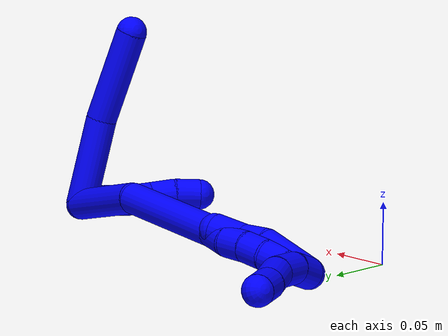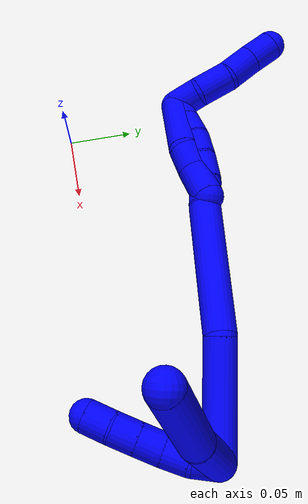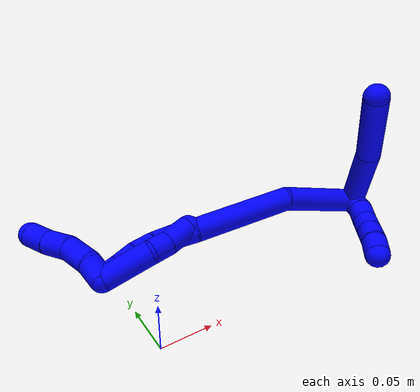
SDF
<sdf version="1.7">
 <world name="default">
  <model name="1">
   <static>0</static>
   <link name="1">
    <collision name="collision-cylinder-e_1_2_8">
     <pose>0.026634 -0.021279 -0.012299 2.09486 0.825533 1.29837</pose>
     <geometry><cylinder><radius>0.0125</radius><length>0.072483</length></cylinder></geometry>
     <surface>
      <friction><ode><mu>1.16</mu><mu2>1.16</mu2><slip1>0</slip1><slip2>0</slip2></ode></friction>
      <contact><ode><kp>1e+06</kp><kd>1</kd><max_vel>0</max_vel><min_depth>0.001</min_depth></ode></contact>
     </surface>
    </collision>
    <visual name="visual-cylinder-e_1_2_8">
     <pose>0.026634 -0.021279 -0.012299 2.09486 0.825533 1.29837</pose>
     <geometry><cylinder><radius>0.0125</radius><length>0.072483</length></cylinder></geometry>
     <material><ambient>0 0 1 1</ambient></material>
    </visual>
    <collision name="collision-cylinder-e_2_8_6">
     <pose>0.080164 -0.062558 -0.044062 2.34263 0.766929 1.5254</pose>
     <geometry><cylinder><radius>0.0125</radius><length>0.077517</length></cylinder></geometry>
     <surface>
      <friction><ode><mu>1.16</mu><mu2>1.16</mu2><slip1>0</slip1><slip2>0</slip2></ode></friction>
      <contact><ode><kp>1e+06</kp><kd>1</kd><max_vel>0</max_vel><min_depth>0.001</min_depth></ode></contact>
     </surface>
    </collision>
    <visual name="visual-cylinder-e_2_8_6">
     <pose>0.080164 -0.062558 -0.044062 2.34263 0.766929 1.5254</pose>
     <geometry><cylinder><radius>0.0125</radius><length>0.077517</length></cylinder></geometry>
     <material><ambient>0 0 1 1</ambient></material>
    </visual>
    <collision name="collision-cylinder-e_1_2_9">
     <pose>0.008308 0.005526 -0.000657 -1.68917 0.980616 -1.08235</pose>
     <geometry><cylinder><radius>0.0125</radius><length>0.02</length></cylinder></geometry>
     <surface>
      <friction><ode><mu>1.16</mu><mu2>1.16</mu2><slip1>0</slip1><slip2>0</slip2></ode></friction>
      <contact><ode><kp>1e+06</kp><kd>1</kd><max_vel>0</max_vel><min_depth>0.001</min_depth></ode></contact>
     </surface>
    </collision>
    <visual name="visual-cylinder-e_1_2_9">
     <pose>0.008308 0.005526 -0.000657 -1.68917 0.980616 -1.08235</pose>
     <geometry><cylinder><radius>0.0125</radius><length>0.02</length></cylinder></geometry>
     <material><ambient>0 0 1 1</ambient></material>
    </visual>
    <collision name="collision-cylinder-e_2_9_10">
     <pose>0.023541 0.017884 -0.003634 -1.89811 0.76483 -1.023</pose>
     <geometry><cylinder><radius>0.0125</radius><length>0.02</length></cylinder></geometry>
     <surface>
      <friction><ode><mu>1.16</mu><mu2>1.16</mu2><slip1>0</slip1><slip2>0</slip2></ode></friction>
      <contact><ode><kp>1e+06</kp><kd>1</kd><max_vel>0</max_vel><min_depth>0.001</min_depth></ode></contact>
     </surface>
    </collision>
    <visual name="visual-cylinder-e_2_9_10">
     <pose>0.023541 0.017884 -0.003634 -1.89811 0.76483 -1.023</pose>
     <geometry><cylinder><radius>0.0125</radius><length>0.02</length></cylinder></geometry>
     <material><ambient>0 0 1 1</ambient></material>
    </visual>
    <collision name="collision-cylinder-e_3_10_11">
     <pose>0.038088 0.030378 -0.009091 -2.0768 0.866841 -1.33167</pose>
     <geometry><cylinder><radius>0.0125</radius><length>0.02</length></cylinder></geometry>
     <surface>
      <friction><ode><mu>1.16</mu><mu2>1.16</mu2><slip1>0</slip1><slip2>0</slip2></ode></friction>
      <contact><ode><kp>1e+06</kp><kd>1</kd><max_vel>0</max_vel><min_depth>0.001</min_depth></ode></contact>
     </surface>
    </collision>
    <visual name="visual-cylinder-e_3_10_11">
     <pose>0.038088 0.030378 -0.009091 -2.0768 0.866841 -1.33167</pose>
     <geometry><cylinder><radius>0.0125</radius><length>0.02</length></cylinder></geometry>
     <material><ambient>0 0 1 1</ambient></material>
    </visual>
    <collision name="collision-cylinder-e_4_11_12">
     <pose>0.053344 0.041622 -0.015477 -2.09779 0.868477 -1.35728</pose>
     <geometry><cylinder><radius>0.0125</radius><length>0.02</length></cylinder></geometry>
     <surface>
      <friction><ode><mu>1.16</mu><mu2>1.16</mu2><slip1>0</slip1><slip2>0</slip2></ode></friction>
      <contact><ode><kp>1e+06</kp><kd>1</kd><max_vel>0</max_vel><min_depth>0.001</min_depth></ode></contact>
     </surface>
    </collision>
    <visual name="visual-cylinder-e_4_11_12">
     <pose>0.053344 0.041622 -0.015477 -2.09779 0.868477 -1.35728</pose>
     <geometry><cylinder><radius>0.0125</radius><length>0.02</length></cylinder></geometry>
     <material><ambient>0 0 1 1</ambient></material>
    </visual>
    <collision name="collision-cylinder-e_5_12_5">
     <pose>0.067535 0.054055 -0.021903 -2.00517 0.715116 -1.05893</pose>
     <geometry><cylinder><radius>0.0125</radius><length>0.02</length></cylinder></geometry>
     <surface>
      <friction><ode><mu>1.16</mu><mu2>1.16</mu2><slip1>0</slip1><slip2>0</slip2></ode></friction>
      <contact><ode><kp>1e+06</kp><kd>1</kd><max_vel>0</max_vel><min_depth>0.001</min_depth></ode></contact>
     </surface>
    </collision>
    <visual name="visual-cylinder-e_5_12_5">
     <pose>0.067535 0.054055 -0.021903 -2.00517 0.715116 -1.05893</pose>
     <geometry><cylinder><radius>0.0125</radius><length>0.02</length></cylinder></geometry>
     <material><ambient>0 0 1 1</ambient></material>
    </visual>
    <collision name="collision-cylinder-e_1_2_13">
     <pose>0.000186 0.003854 -0.043642 -3.0535 0.004255 -0.096465</pose>
     <geometry><cylinder><radius>0.0125</radius><length>0.087624</length></cylinder></geometry>
     <surface>
      <friction><ode><mu>1.16</mu><mu2>1.16</mu2><slip1>0</slip1><slip2>0</slip2></ode></friction>
      <contact><ode><kp>1e+06</kp><kd>1</kd><max_vel>0</max_vel><min_depth>0.001</min_depth></ode></contact>
     </surface>
    </collision>
    <visual name="visual-cylinder-e_1_2_13">
     <pose>0.000186 0.003854 -0.043642 -3.0535 0.004255 -0.096465</pose>
     <geometry><cylinder><radius>0.0125</radius><length>0.087624</length></cylinder></geometry>
     <material><ambient>0 0 1 1</ambient></material>
    </visual>
    <collision name="collision-cylinder-e_2_13_14">
     <pose>-0.004652 0.028697 -0.135924 -2.73423 -0.09457 0.450437</pose>
     <geometry><cylinder><radius>0.0125</radius><length>0.106427</length></cylinder></geometry>
     <surface>
      <friction><ode><mu>1.16</mu><mu2>1.16</mu2><slip1>0</slip1><slip2>0</slip2></ode></friction>
      <contact><ode><kp>1e+06</kp><kd>1</kd><max_vel>0</max_vel><min_depth>0.001</min_depth></ode></contact>
     </surface>
    </collision>
    <visual name="visual-cylinder-e_2_13_14">
     <pose>-0.004652 0.028697 -0.135924 -2.73423 -0.09457 0.450437</pose>
     <geometry><cylinder><radius>0.0125</radius><length>0.106427</length></cylinder></geometry>
     <material><ambient>0 0 1 1</ambient></material>
    </visual>
    <collision name="collision-cylinder-e_3_14_15">
     <pose>-0.012417 0.053967 -0.19534 -2.76334 -0.232073 1.09394</pose>
     <geometry><cylinder><radius>0.0125</radius><length>0.023828</length></cylinder></geometry>
     <surface>
      <friction><ode><mu>1.16</mu><mu2>1.16</mu2><slip1>0</slip1><slip2>0</slip2></ode></friction>
      <contact><ode><kp>1e+06</kp><kd>1</kd><max_vel>0</max_vel><min_depth>0.001</min_depth></ode></contact>
     </surface>
    </collision>
    <visual name="visual-cylinder-e_3_14_15">
     <pose>-0.012417 0.053967 -0.19534 -2.76334 -0.232073 1.09394</pose>
     <geometry><cylinder><radius>0.0125</radius><length>0.023828</length></cylinder></geometry>
     <material><ambient>0 0 1 1</ambient></material>
    </visual>
    <collision name="collision-cylinder-e_4_15_16">
     <pose>-0.015026 0.062614 -0.215735 -2.71562 0.0124 -0.05732</pose>
     <geometry><cylinder><radius>0.0125</radius><length>0.021129</length></cylinder></geometry>
     <surface>
      <friction><ode><mu>1.16</mu><mu2>1.16</mu2><slip1>0</slip1><slip2>0</slip2></ode></friction>
      <contact><ode><kp>1e+06</kp><kd>1</kd><max_vel>0</max_vel><min_depth>0.001</min_depth></ode></contact>
     </surface>
    </collision>
    <visual name="visual-cylinder-e_4_15_16">
     <pose>-0.015026 0.062614 -0.215735 -2.71562 0.0124 -0.05732</pose>
     <geometry><cylinder><radius>0.0125</radius><length>0.021129</length></cylinder></geometry>
     <material><ambient>0 0 1 1</ambient></material>
    </visual>
    <collision name="collision-cylinder-e_5_16_17">
     <pose>-0.015094 0.072252 -0.233978 -2.59281 -0.019628 0.069705</pose>
     <geometry><cylinder><radius>0.0125</radius><length>0.020219</length></cylinder></geometry>
     <surface>
      <friction><ode><mu>1.16</mu><mu2>1.16</mu2><slip1>0</slip1><slip2>0</slip2></ode></friction>
      <contact><ode><kp>1e+06</kp><kd>1</kd><max_vel>0</max_vel><min_depth>0.001</min_depth></ode></contact>
     </surface>
    </collision>
    <visual name="visual-cylinder-e_5_16_17">
     <pose>-0.015094 0.072252 -0.233978 -2.59281 -0.019628 0.069705</pose>
     <geometry><cylinder><radius>0.0125</radius><length>0.020219</length></cylinder></geometry>
     <material><ambient>0 0 1 1</ambient></material>
    </visual>
    <collision name="collision-cylinder-e_6_17_18">
     <pose>-0.014743 0.084284 -0.250446 -2.43032 0.052941 -0.142325</pose>
     <geometry><cylinder><radius>0.0125</radius><length>0.020739</length></cylinder></geometry>
     <surface>
      <friction><ode><mu>1.16</mu><mu2>1.16</mu2><slip1>0</slip1><slip2>0</slip2></ode></friction>
      <contact><ode><kp>1e+06</kp><kd>1</kd><max_vel>0</max_vel><min_depth>0.001</min_depth></ode></contact>
     </surface>
    </collision>
    <visual name="visual-cylinder-e_6_17_18">
     <pose>-0.014743 0.084284 -0.250446 -2.43032 0.052941 -0.142325</pose>
     <geometry><cylinder><radius>0.0125</radius><length>0.020739</length></cylinder></geometry>
     <material><ambient>0 0 1 1</ambient></material>
    </visual>
    <collision name="collision-cylinder-e_7_18_1">
     <pose>-0.013457 0.097325 -0.266058 -2.46156 0.073677 -0.207617</pose>
     <geometry><cylinder><radius>0.0125</radius><length>0.020033</length></cylinder></geometry>
     <surface>
      <friction><ode><mu>1.16</mu><mu2>1.16</mu2><slip1>0</slip1><slip2>0</slip2></ode></friction>
      <contact><ode><kp>1e+06</kp><kd>1</kd><max_vel>0</max_vel><min_depth>0.001</min_depth></ode></contact>
     </surface>
    </collision>
    <visual name="visual-cylinder-e_7_18_1">
     <pose>-0.013457 0.097325 -0.266058 -2.46156 0.073677 -0.207617</pose>
     <geometry><cylinder><radius>0.0125</radius><length>0.020033</length></cylinder></geometry>
     <material><ambient>0 0 1 1</ambient></material>
    </visual>
    <collision name="collision-cylinder-e_1_1_19">
     <pose>-0.018576 0.096173 -0.279589 2.23038 -0.55681 -1.05615</pose>
     <geometry><cylinder><radius>0.0125</radius><length>0.02216</length></cylinder></geometry>
     <surface>
      <friction><ode><mu>1.16</mu><mu2>1.16</mu2><slip1>0</slip1><slip2>0</slip2></ode></friction>
      <contact><ode><kp>1e+06</kp><kd>1</kd><max_vel>0</max_vel><min_depth>0.001</min_depth></ode></contact>
     </surface>
    </collision>
    <visual name="visual-cylinder-e_1_1_19">
     <pose>-0.018576 0.096173 -0.279589 2.23038 -0.55681 -1.05615</pose>
     <geometry><cylinder><radius>0.0125</radius><length>0.02216</length></cylinder></geometry>
     <material><ambient>0 0 1 1</ambient></material>
    </visual>
    <collision name="collision-cylinder-e_2_19_20">
     <pose>-0.034488 0.082728 -0.293251 2.49096 -0.791958 -1.78382</pose>
     <geometry><cylinder><radius>0.0125</radius><length>0.028259</length></cylinder></geometry>
     <surface>
      <friction><ode><mu>1.16</mu><mu2>1.16</mu2><slip1>0</slip1><slip2>0</slip2></ode></friction>
      <contact><ode><kp>1e+06</kp><kd>1</kd><max_vel>0</max_vel><min_depth>0.001</min_depth></ode></contact>
     </surface>
    </collision>
    <visual name="visual-cylinder-e_2_19_20">
     <pose>-0.034488 0.082728 -0.293251 2.49096 -0.791958 -1.78382</pose>
     <geometry><cylinder><radius>0.0125</radius><length>0.028259</length></cylinder></geometry>
     <material><ambient>0 0 1 1</ambient></material>
    </visual>
    <collision name="collision-cylinder-e_3_20_21">
     <pose>-0.053994 0.074684 -0.309989 2.91566 -0.805814 -2.62132</pose>
     <geometry><cylinder><radius>0.0125</radius><length>0.026199</length></cylinder></geometry>
     <surface>
      <friction><ode><mu>1.16</mu><mu2>1.16</mu2><slip1>0</slip1><slip2>0</slip2></ode></friction>
      <contact><ode><kp>1e+06</kp><kd>1</kd><max_vel>0</max_vel><min_depth>0.001</min_depth></ode></contact>
     </surface>
    </collision>
    <visual name="visual-cylinder-e_3_20_21">
     <pose>-0.053994 0.074684 -0.309989 2.91566 -0.805814 -2.62132</pose>
     <geometry><cylinder><radius>0.0125</radius><length>0.026199</length></cylinder></geometry>
     <material><ambient>0 0 1 1</ambient></material>
    </visual>
    <collision name="collision-cylinder-e_4_21_4">
     <pose>-0.071789 0.069436 -0.32636 2.73793 -0.794909 -2.23452</pose>
     <geometry><cylinder><radius>0.0125</radius><length>0.023382</length></cylinder></geometry>
     <surface>
      <friction><ode><mu>1.16</mu><mu2>1.16</mu2><slip1>0</slip1><slip2>0</slip2></ode></friction>
      <contact><ode><kp>1e+06</kp><kd>1</kd><max_vel>0</max_vel><min_depth>0.001</min_depth></ode></contact>
     </surface>
    </collision>
    <visual name="visual-cylinder-e_4_21_4">
     <pose>-0.071789 0.069436 -0.32636 2.73793 -0.794909 -2.23452</pose>
     <geometry><cylinder><radius>0.0125</radius><length>0.023382</length></cylinder></geometry>
     <material><ambient>0 0 1 1</ambient></material>
    </visual>
    <collision name="collision-cylinder-e_1_1_22">
     <pose>-0.008502 0.089296 -0.252895 0.599736 0.164841 0.051072</pose>
     <geometry><cylinder><radius>0.0125</radius><length>0.051407</length></cylinder></geometry>
     <surface>
      <friction><ode><mu>1.16</mu><mu2>1.16</mu2><slip1>0</slip1><slip2>0</slip2></ode></friction>
      <contact><ode><kp>1e+06</kp><kd>1</kd><max_vel>0</max_vel><min_depth>0.001</min_depth></ode></contact>
     </surface>
    </collision>
    <visual name="visual-cylinder-e_1_1_22">
     <pose>-0.008502 0.089296 -0.252895 0.599736 0.164841 0.051072</pose>
     <geometry><cylinder><radius>0.0125</radius><length>0.051407</length></cylinder></geometry>
     <material><ambient>0 0 1 1</ambient></material>
    </visual>
    <collision name="collision-cylinder-e_2_22_23">
     <pose>-0.006043 0.06987 -0.222932 0.515216 -0.167875 -0.044326</pose>
     <geometry><cylinder><radius>0.0125</radius><length>0.021055</length></cylinder></geometry>
     <surface>
      <friction><ode><mu>1.16</mu><mu2>1.16</mu2><slip1>0</slip1><slip2>0</slip2></ode></friction>
      <contact><ode><kp>1e+06</kp><kd>1</kd><max_vel>0</max_vel><min_depth>0.001</min_depth></ode></contact>
     </surface>
    </collision>
    <visual name="visual-cylinder-e_2_22_23">
     <pose>-0.006043 0.06987 -0.222932 0.515216 -0.167875 -0.044326</pose>
     <geometry><cylinder><radius>0.0125</radius><length>0.021055</length></cylinder></geometry>
     <material><ambient>0 0 1 1</ambient></material>
    </visual>
    <collision name="collision-cylinder-e_3_23_3">
     <pose>-0.009082 0.056183 -0.203202 0.675555 -0.09304 -0.0327</pose>
     <geometry><cylinder><radius>0.0125</radius><length>0.027538</length></cylinder></geometry>
     <surface>
      <friction><ode><mu>1.16</mu><mu2>1.16</mu2><slip1>0</slip1><slip2>0</slip2></ode></friction>
      <contact><ode><kp>1e+06</kp><kd>1</kd><max_vel>0</max_vel><min_depth>0.001</min_depth></ode></contact>
     </surface>
    </collision>
    <visual name="visual-cylinder-e_3_23_3">
     <pose>-0.009082 0.056183 -0.203202 0.675555 -0.09304 -0.0327</pose>
     <geometry><cylinder><radius>0.0125</radius><length>0.027538</length></cylinder></geometry>
     <material><ambient>0 0 1 1</ambient></material>
    </visual>
    <collision name="collision-sphere-3">
     <pose>-0.010361 0.04761 -0.192504 0 -0 0</pose>
     <geometry><sphere><radius>0.0125</radius></sphere></geometry>
     <surface>
      <friction><ode><mu>1.16</mu><mu2>1.16</mu2><slip1>0</slip1><slip2>0</slip2></ode></friction>
      <contact><ode><kp>1e+06</kp><kd>1</kd><max_vel>0</max_vel><min_depth>0.001</min_depth></ode></contact>
     </surface>
    </collision>
    <visual name="visual-sphere-3">
     <pose>-0.010361 0.04761 -0.192504 0 -0 0</pose>
     <geometry><sphere><radius>0.0125</radius></sphere></geometry>
     <material><ambient>0 0 1 1</ambient></material>
    </visual>
    <collision name="collision-sphere-23">
     <pose>-0.007802 0.064756 -0.2139 0 -0 0</pose>
     <geometry><sphere><radius>0.0125</radius></sphere></geometry>
     <surface>
      <friction><ode><mu>1.16</mu><mu2>1.16</mu2><slip1>0</slip1><slip2>0</slip2></ode></friction>
      <contact><ode><kp>1e+06</kp><kd>1</kd><max_vel>0</max_vel><min_depth>0.001</min_depth></ode></contact>
     </surface>
    </collision>
    <visual name="visual-sphere-23">
     <pose>-0.007802 0.064756 -0.2139 0 -0 0</pose>
     <geometry><sphere><radius>0.0125</radius></sphere></geometry>
     <material><ambient>0 0 1 1</ambient></material>
    </visual>
    <collision name="collision-sphere-22">
     <pose>-0.004284 0.074985 -0.231964 0 -0 0</pose>
     <geometry><sphere><radius>0.0125</radius></sphere></geometry>
     <surface>
      <friction><ode><mu>1.16</mu><mu2>1.16</mu2><slip1>0</slip1><slip2>0</slip2></ode></friction>
      <contact><ode><kp>1e+06</kp><kd>1</kd><max_vel>0</max_vel><min_depth>0.001</min_depth></ode></contact>
     </surface>
    </collision>
    <visual name="visual-sphere-22">
     <pose>-0.004284 0.074985 -0.231964 0 -0 0</pose>
     <geometry><sphere><radius>0.0125</radius></sphere></geometry>
     <material><ambient>0 0 1 1</ambient></material>
    </visual>
    <collision name="collision-sphere-4">
     <pose>-0.080134 0.06622 -0.33389 0 -0 0</pose>
     <geometry><sphere><radius>0.0125</radius></sphere></geometry>
     <surface>
      <friction><ode><mu>1.16</mu><mu2>1.16</mu2><slip1>0</slip1><slip2>0</slip2></ode></friction>
      <contact><ode><kp>1e+06</kp><kd>1</kd><max_vel>0</max_vel><min_depth>0.001</min_depth></ode></contact>
     </surface>
    </collision>
    <visual name="visual-sphere-4">
     <pose>-0.080134 0.06622 -0.33389 0 -0 0</pose>
     <geometry><sphere><radius>0.0125</radius></sphere></geometry>
     <material><ambient>0 0 1 1</ambient></material>
    </visual>
    <collision name="collision-sphere-21">
     <pose>-0.063444 0.072652 -0.318831 0 -0 0</pose>
     <geometry><sphere><radius>0.0125</radius></sphere></geometry>
     <surface>
      <friction><ode><mu>1.16</mu><mu2>1.16</mu2><slip1>0</slip1><slip2>0</slip2></ode></friction>
      <contact><ode><kp>1e+06</kp><kd>1</kd><max_vel>0</max_vel><min_depth>0.001</min_depth></ode></contact>
     </surface>
    </collision>
    <visual name="visual-sphere-21">
     <pose>-0.063444 0.072652 -0.318831 0 -0 0</pose>
     <geometry><sphere><radius>0.0125</radius></sphere></geometry>
     <material><ambient>0 0 1 1</ambient></material>
    </visual>
    <collision name="collision-sphere-20">
     <pose>-0.044544 0.076717 -0.301148 0 -0 0</pose>
     <geometry><sphere><radius>0.0125</radius></sphere></geometry>
     <surface>
      <friction><ode><mu>1.16</mu><mu2>1.16</mu2><slip1>0</slip1><slip2>0</slip2></ode></friction>
      <contact><ode><kp>1e+06</kp><kd>1</kd><max_vel>0</max_vel><min_depth>0.001</min_depth></ode></contact>
     </surface>
    </collision>
    <visual name="visual-sphere-20">
     <pose>-0.044544 0.076717 -0.301148 0 -0 0</pose>
     <geometry><sphere><radius>0.0125</radius></sphere></geometry>
     <material><ambient>0 0 1 1</ambient></material>
    </visual>
    <collision name="collision-sphere-11">
     <pose>0.045711 0.036039 -0.012228 0 -0 0</pose>
     <geometry><sphere><radius>0.0125</radius></sphere></geometry>
     <surface>
      <friction><ode><mu>1.16</mu><mu2>1.16</mu2><slip1>0</slip1><slip2>0</slip2></ode></friction>
      <contact><ode><kp>1e+06</kp><kd>1</kd><max_vel>0</max_vel><min_depth>0.001</min_depth></ode></contact>
     </surface>
    </collision>
    <visual name="visual-sphere-11">
     <pose>0.045711 0.036039 -0.012228 0 -0 0</pose>
     <geometry><sphere><radius>0.0125</radius></sphere></geometry>
     <material><ambient>0 0 1 1</ambient></material>
    </visual>
    <collision name="collision-sphere-10">
     <pose>0.030465 0.024716 -0.005954 0 -0 0</pose>
     <geometry><sphere><radius>0.0125</radius></sphere></geometry>
     <surface>
      <friction><ode><mu>1.16</mu><mu2>1.16</mu2><slip1>0</slip1><slip2>0</slip2></ode></friction>
      <contact><ode><kp>1e+06</kp><kd>1</kd><max_vel>0</max_vel><min_depth>0.001</min_depth></ode></contact>
     </surface>
    </collision>
    <visual name="visual-sphere-10">
     <pose>0.030465 0.024716 -0.005954 0 -0 0</pose>
     <geometry><sphere><radius>0.0125</radius></sphere></geometry>
     <material><ambient>0 0 1 1</ambient></material>
    </visual>
    <collision name="collision-sphere-6">
     <pose>0.10706 -0.082558 -0.063527 0 -0 0</pose>
     <geometry><sphere><radius>0.0125</radius></sphere></geometry>
     <surface>
      <friction><ode><mu>1.16</mu><mu2>1.16</mu2><slip1>0</slip1><slip2>0</slip2></ode></friction>
      <contact><ode><kp>1e+06</kp><kd>1</kd><max_vel>0</max_vel><min_depth>0.001</min_depth></ode></contact>
     </surface>
    </collision>
    <visual name="visual-sphere-6">
     <pose>0.10706 -0.082558 -0.063527 0 -0 0</pose>
     <geometry><sphere><radius>0.0125</radius></sphere></geometry>
     <material><ambient>0 0 1 1</ambient></material>
    </visual>
    <collision name="collision-sphere-9">
     <pose>0.016617 0.011052 -0.001314 0 -0 0</pose>
     <geometry><sphere><radius>0.0125</radius></sphere></geometry>
     <surface>
      <friction><ode><mu>1.16</mu><mu2>1.16</mu2><slip1>0</slip1><slip2>0</slip2></ode></friction>
      <contact><ode><kp>1e+06</kp><kd>1</kd><max_vel>0</max_vel><min_depth>0.001</min_depth></ode></contact>
     </surface>
    </collision>
    <visual name="visual-sphere-9">
     <pose>0.016617 0.011052 -0.001314 0 -0 0</pose>
     <geometry><sphere><radius>0.0125</radius></sphere></geometry>
     <material><ambient>0 0 1 1</ambient></material>
    </visual>
    <collision name="collision-sphere-2">
     <geometry><sphere><radius>0.0125</radius></sphere></geometry>
     <surface>
      <friction><ode><mu>1.16</mu><mu2>1.16</mu2><slip1>0</slip1><slip2>0</slip2></ode></friction>
      <contact><ode><kp>1e+06</kp><kd>1</kd><max_vel>0</max_vel><min_depth>0.001</min_depth></ode></contact>
     </surface>
    </collision>
    <visual name="visual-sphere-2">
     <geometry><sphere><radius>0.0125</radius></sphere></geometry>
     <material><ambient>0 0 1 1</ambient></material>
    </visual>
    <collision name="collision-sphere-19">
     <pose>-0.024431 0.08874 -0.285353 0 -0 0</pose>
     <geometry><sphere><radius>0.0125</radius></sphere></geometry>
     <surface>
      <friction><ode><mu>1.16</mu><mu2>1.16</mu2><slip1>0</slip1><slip2>0</slip2></ode></friction>
      <contact><ode><kp>1e+06</kp><kd>1</kd><max_vel>0</max_vel><min_depth>0.001</min_depth></ode></contact>
     </surface>
    </collision>
    <visual name="visual-sphere-19">
     <pose>-0.024431 0.08874 -0.285353 0 -0 0</pose>
     <geometry><sphere><radius>0.0125</radius></sphere></geometry>
     <material><ambient>0 0 1 1</ambient></material>
    </visual>
    <collision name="collision-sphere-8">
     <pose>0.053268 -0.042558 -0.024598 0 -0 0</pose>
     <geometry><sphere><radius>0.0125</radius></sphere></geometry>
     <surface>
      <friction><ode><mu>1.16</mu><mu2>1.16</mu2><slip1>0</slip1><slip2>0</slip2></ode></friction>
      <contact><ode><kp>1e+06</kp><kd>1</kd><max_vel>0</max_vel><min_depth>0.001</min_depth></ode></contact>
     </surface>
    </collision>
    <visual name="visual-sphere-8">
     <pose>0.053268 -0.042558 -0.024598 0 -0 0</pose>
     <geometry><sphere><radius>0.0125</radius></sphere></geometry>
     <material><ambient>0 0 1 1</ambient></material>
    </visual>
    <collision name="collision-sphere-12">
     <pose>0.060978 0.047206 -0.018726 0 -0 0</pose>
     <geometry><sphere><radius>0.0125</radius></sphere></geometry>
     <surface>
      <friction><ode><mu>1.16</mu><mu2>1.16</mu2><slip1>0</slip1><slip2>0</slip2></ode></friction>
      <contact><ode><kp>1e+06</kp><kd>1</kd><max_vel>0</max_vel><min_depth>0.001</min_depth></ode></contact>
     </surface>
    </collision>
    <visual name="visual-sphere-12">
     <pose>0.060978 0.047206 -0.018726 0 -0 0</pose>
     <geometry><sphere><radius>0.0125</radius></sphere></geometry>
     <material><ambient>0 0 1 1</ambient></material>
    </visual>
    <collision name="collision-sphere-5">
     <pose>0.074092 0.060904 -0.025081 0 -0 0</pose>
     <geometry><sphere><radius>0.0125</radius></sphere></geometry>
     <surface>
      <friction><ode><mu>1.16</mu><mu2>1.16</mu2><slip1>0</slip1><slip2>0</slip2></ode></friction>
      <contact><ode><kp>1e+06</kp><kd>1</kd><max_vel>0</max_vel><min_depth>0.001</min_depth></ode></contact>
     </surface>
    </collision>
    <visual name="visual-sphere-5">
     <pose>0.074092 0.060904 -0.025081 0 -0 0</pose>
     <geometry><sphere><radius>0.0125</radius></sphere></geometry>
     <material><ambient>0 0 1 1</ambient></material>
    </visual>
    <collision name="collision-sphere-13">
     <pose>0.000373 0.007709 -0.087283 0 -0 0</pose>
     <geometry><sphere><radius>0.0125</radius></sphere></geometry>
     <surface>
      <friction><ode><mu>1.16</mu><mu2>1.16</mu2><slip1>0</slip1><slip2>0</slip2></ode></friction>
      <contact><ode><kp>1e+06</kp><kd>1</kd><max_vel>0</max_vel><min_depth>0.001</min_depth></ode></contact>
     </surface>
    </collision>
    <visual name="visual-sphere-13">
     <pose>0.000373 0.007709 -0.087283 0 -0 0</pose>
     <geometry><sphere><radius>0.0125</radius></sphere></geometry>
     <material><ambient>0 0 1 1</ambient></material>
    </visual>
    <collision name="collision-sphere-14">
     <pose>-0.009677 0.049685 -0.184565 0 -0 0</pose>
     <geometry><sphere><radius>0.0125</radius></sphere></geometry>
     <surface>
      <friction><ode><mu>1.16</mu><mu2>1.16</mu2><slip1>0</slip1><slip2>0</slip2></ode></friction>
      <contact><ode><kp>1e+06</kp><kd>1</kd><max_vel>0</max_vel><min_depth>0.001</min_depth></ode></contact>
     </surface>
    </collision>
    <visual name="visual-sphere-14">
     <pose>-0.009677 0.049685 -0.184565 0 -0 0</pose>
     <geometry><sphere><radius>0.0125</radius></sphere></geometry>
     <material><ambient>0 0 1 1</ambient></material>
    </visual>
    <collision name="collision-sphere-15">
     <pose>-0.015157 0.058249 -0.206115 0 -0 0</pose>
     <geometry><sphere><radius>0.0125</radius></sphere></geometry>
     <surface>
      <friction><ode><mu>1.16</mu><mu2>1.16</mu2><slip1>0</slip1><slip2>0</slip2></ode></friction>
      <contact><ode><kp>1e+06</kp><kd>1</kd><max_vel>0</max_vel><min_depth>0.001</min_depth></ode></contact>
     </surface>
    </collision>
    <visual name="visual-sphere-15">
     <pose>-0.015157 0.058249 -0.206115 0 -0 0</pose>
     <geometry><sphere><radius>0.0125</radius></sphere></geometry>
     <material><ambient>0 0 1 1</ambient></material>
    </visual>
    <collision name="collision-sphere-16">
     <pose>-0.014895 0.066979 -0.225355 0 -0 0</pose>
     <geometry><sphere><radius>0.0125</radius></sphere></geometry>
     <surface>
      <friction><ode><mu>1.16</mu><mu2>1.16</mu2><slip1>0</slip1><slip2>0</slip2></ode></friction>
      <contact><ode><kp>1e+06</kp><kd>1</kd><max_vel>0</max_vel><min_depth>0.001</min_depth></ode></contact>
     </surface>
    </collision>
    <visual name="visual-sphere-16">
     <pose>-0.014895 0.066979 -0.225355 0 -0 0</pose>
     <geometry><sphere><radius>0.0125</radius></sphere></geometry>
     <material><ambient>0 0 1 1</ambient></material>
    </visual>
    <collision name="collision-sphere-17">
     <pose>-0.015292 0.077524 -0.242602 0 -0 0</pose>
     <geometry><sphere><radius>0.0125</radius></sphere></geometry>
     <surface>
      <friction><ode><mu>1.16</mu><mu2>1.16</mu2><slip1>0</slip1><slip2>0</slip2></ode></friction>
      <contact><ode><kp>1e+06</kp><kd>1</kd><max_vel>0</max_vel><min_depth>0.001</min_depth></ode></contact>
     </surface>
    </collision>
    <visual name="visual-sphere-17">
     <pose>-0.015292 0.077524 -0.242602 0 -0 0</pose>
     <geometry><sphere><radius>0.0125</radius></sphere></geometry>
     <material><ambient>0 0 1 1</ambient></material>
    </visual>
    <collision name="collision-sphere-18">
     <pose>-0.014195 0.091044 -0.25829 0 -0 0</pose>
     <geometry><sphere><radius>0.0125</radius></sphere></geometry>
     <surface>
      <friction><ode><mu>1.16</mu><mu2>1.16</mu2><slip1>0</slip1><slip2>0</slip2></ode></friction>
      <contact><ode><kp>1e+06</kp><kd>1</kd><max_vel>0</max_vel><min_depth>0.001</min_depth></ode></contact>
     </surface>
    </collision>
    <visual name="visual-sphere-18">
     <pose>-0.014195 0.091044 -0.25829 0 -0 0</pose>
     <geometry><sphere><radius>0.0125</radius></sphere></geometry>
     <material><ambient>0 0 1 1</ambient></material>
    </visual>
    <collision name="collision-sphere-1">
     <pose>-0.01272 0.103607 -0.273825 0 -0 0</pose>
     <geometry><sphere><radius>0.0125</radius></sphere></geometry>
     <surface>
      <friction><ode><mu>1.16</mu><mu2>1.16</mu2><slip1>0</slip1><slip2>0</slip2></ode></friction>
      <contact><ode><kp>1e+06</kp><kd>1</kd><max_vel>0</max_vel><min_depth>0.001</min_depth></ode></contact>
     </surface>
    </collision>
    <visual name="visual-sphere-1">
     <pose>-0.01272 0.103607 -0.273825 0 -0 0</pose>
     <geometry><sphere><radius>0.0125</radius></sphere></geometry>
     <material><ambient>0 0 1 1</ambient></material>
    </visual>
    <inertial>
     <pose>0.006259 0.03122 -0.135474 0 -0 0</pose>
     <mass>0.75</mass>
     <inertia><ixx>0.000277</ixx><ixy>0</ixy><ixz>0</ixz><iyy>-6e-06</iyy><iyz>0</iyz><izz>-7.2e-05</izz></inertia>
    </inertial>
   </link>
   <pose>0.279304 0.068497 0.011523 -1.96202 -0.598567 -1.60006</pose>
  </model>
 </world>
</sdf>
